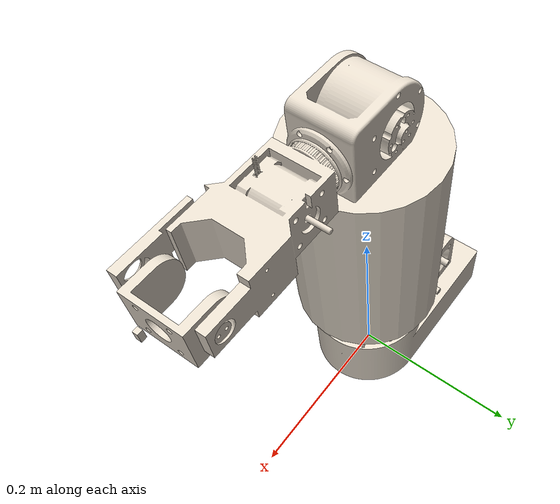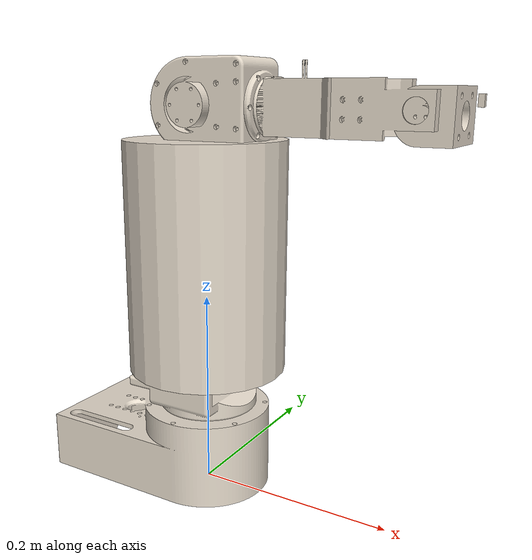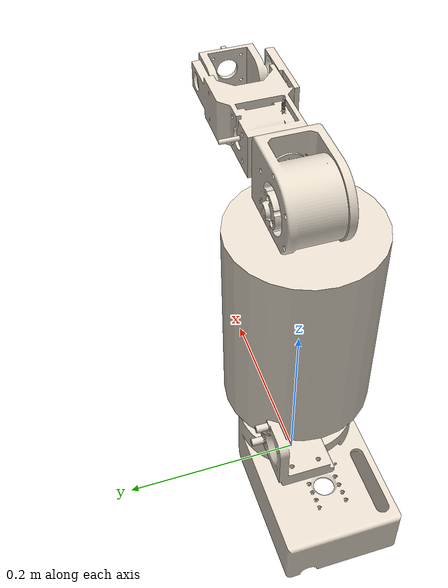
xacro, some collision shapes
<?xml version="1.0"?>
<robot xmlns:xacro="http://www.ros.org/wiki/xacro" name="r6bot">
    <xacro:arg name="initial_positions_file" default="initial_positions.yaml" />

    <!-- Import r6bot urdf file -->
    <xacro:include filename="$(find ros2_control_demo_example_7)/urdf/r6bot.urdf.xacro" />

    <!-- Import control_xacro -->
    <xacro:include filename="r6bot.ros2_control.xacro" />

    <xacro:r6bot_ros2_control name="FakeSystem" initial_positions_file="$(arg initial_positions_file)"/>

</robot>

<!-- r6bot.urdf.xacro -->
<robot xmlns:xacro="http://wiki.ros.org/xacro" name="r6bot">

  <!-- Import my robot's urdf macro -->
  <xacro:include filename="$(find robot_description)/urdf/robot.urdf.xacro" />

  <xacro:my_robot_description />

  <!-- Import r6bot ros2_control description -->
  <xacro:include
    filename="$(find ros2_control_demo_example_7)/ros2_control/r6bot.ros2_control.xacro" />
  <xacro:r6bot_ros2_control name="r6bot" />

</robot>

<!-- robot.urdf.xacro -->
<!-- This file needs cleaned up. Over-parameterised-->
<robot
    xmlns:xacro="http://www.ros.org/wiki/xacro"
    name="robot">

    <xacro:macro name="my_robot_description">
        <!-- meshes -->
        <xacro:property name="base_mesh"
            value="package://robot_description/meshes/arm_base_mesh.stl" />
        <xacro:property name="link_1_mesh"
            value="package://robot_description/meshes/arm_link_1_mesh.stl" />
        <xacro:property name="link_2_mesh"
            value="package://robot_description/meshes/arm_link_2_mesh.stl" />
        <xacro:property name="link_3_mesh"
            value="package://robot_description/meshes/arm_link_3_mesh.stl" />
        <xacro:property name="link_4_mesh"
            value="package://robot_description/meshes/arm_link_4_mesh.stl" />
        <xacro:property name="link_5_mesh"
            value="package://robot_description/meshes/arm_link_5_mesh.stl" />

        <xacro:property name="base_mass" value="12.0" />
        <xacro:property name="base_radius" value="0.09" />
        <xacro:property name="base_length" value="0.086" />
        <xacro:property name="link_1_radius" value="0.09" />
        <xacro:property name="link_1_length" value="0.079" />
        <xacro:property name="link_2_radius" value="0.08" />
        <xacro:property name="link_2_length" value="0.23" />
        <xacro:property name="link_3_radius" value="0.07" />
        <xacro:property name="link_3_length" value="0.075" />
        <xacro:property name="link_4_radius" value="0.05" />
        <xacro:property name="link_4_length" value="0.145" />
        <xacro:property name="link_5_radius" value="0.05" />
        <xacro:property name="link_5_length" value="0.03" />
        <xacro:property name="end_effector_length" value="0.01" />
        <xacro:property name="end_effector_width" value="0.005" />
        <xacro:property name="end_effector_height" value="0.005" />
        <xacro:property name="end_effector_mass" value="0.5" />

        <material name="bone">
            <color rgba="0.89 0.85 0.79 1" />
        </material>

        <material name="navy">
            <color rgba="0.16 0.18 0.34 1" />
        </material>

        <xacro:macro name="link" params="suffix mesh xyz rpy geom_xyz length radius mass colour">
            <link name="link_${suffix}">
                <visual>
                    <origin xyz="${xyz}" rpy="${rpy}" />
                    <geometry>
                        <mesh
                            filename="${mesh}"
                            scale="0.001 0.001 0.001" />
                    </geometry>
                    <material name="${colour}" />
                </visual>
                <collision>
                    <origin xyz="${geom_xyz}" rpy="0.0 0.0 0.0" />
                    <geometry>
                        <cylinder radius="${radius}" length="${length}" />
                    </geometry>
                </collision>
                <inertial>
                    <origin xyz="${xyz}" rpy="${rpy}" />
                    <mass value="${mass}" />
                    <inertia
                        ixx="${mass * (3*radius*radius + length*length) / 12.0}"
                        ixy="0" ixz="0"
                        iyy="${mass * radius * radius / 2.0}"
                        iyz="0"
                        izz="${mass * (3*radius*radius + length*length) / 12.0}" />
                </inertial>
            </link>
        </xacro:macro>

        <link name="world" />
        <joint name="world_joint" type="fixed">
            <parent link="world" />
            <child link="link_base" />
            <origin xyz="0.0 0.0 0.0" rpy="0.0 0.0 0.0" />
        </joint>

        <link name="link_base">
            <visual>
                <!-- dont want half of base joint, want half of motor enclosure (lower part) -->
                <origin xyz="0.0 0.0 0.0295" rpy="0.0 0.0 ${pi}" />
                <geometry>
                    <mesh
                        filename="${base_mesh}"
                        scale="0.001 0.001 0.001" />
                </geometry>
                <material name="bone" />
            </visual>
            <collision>
                <origin xyz="0.0 0.0 0.0295" rpy="0.0 0.0 0.0" />
                <geometry>
                    <cylinder radius="${base_radius}" length="${base_length}" />
                </geometry>
            </collision>
            <inertial>
                <origin xyz="0.0 0.0 0.0295" rpy="0.0 0.0 0.0" />
                <mass value="0.5" />
                <inertia
                    ixx="${0.5 * (3*base_radius*base_radius + base_length*base_length) / 12.0}"
                    ixy="0" ixz="0"
                    iyy="${0.5 * base_radius * base_radius / 2.0}"
                    iyz="0"
                    izz="${0.5 * (3*base_radius*base_radius + base_length*base_length) / 12.0}" />
            </inertial>
        </link>

        <joint name="joint_1" type="continuous">
            <parent link="link_base" />
            <child link="link_1" />
            <origin xyz="0.0 0.0 ${base_length}" rpy="0.0 0.0 0.0" />
            <axis xyz="0 0 1" />
        </joint>

        <xacro:link suffix="1" mesh="${link_1_mesh}" xyz="0.0 0.0 -0.055" rpy="0.0 0.0 0.0"
            geom_xyz="0.0 0.0 0.0"
            length="${link_1_length}"
            radius="${link_1_radius}"
            mass="0.5"
            colour="bone" />
        <joint name="joint_2" type="revolute">
            <limit lower="${0}" upper="${pi/2}" effort="0.0" velocity="${pi}" />
            <parent link="link_1" />
            <child link="link_2" />
            <origin xyz="0.0 0.0 ${link_1_length}" rpy="0.0 0.0 0.0" />
            <axis xyz="0.0 1 0.0" />
        </joint>

        <xacro:link suffix="2" mesh="${link_2_mesh}" xyz="0.0 0.0 -0.134" rpy="0.0 0.0 0.0"
            geom_xyz="0.0 0.0 0.078"
            length="${link_2_length}"
            radius="${link_2_radius}"
            mass="0.5"
            colour="bone" />
        <joint name="joint_3" type="revolute">
            <limit lower="${-pi/2}" upper="${pi/2}" effort="0.0" velocity="${pi}" />
            <parent link="link_2" />
            <child link="link_3" />
            <origin xyz="0.0 0.0 ${link_2_length}" rpy="0.0 ${pi/2} 0.0" />
            <axis xyz="0.0 1 0.0" />
        </joint>

        <xacro:link suffix="3" mesh="${link_3_mesh}" xyz="0.365 0.0 0.0" rpy="0.0 -${pi/2} 0.0"
            geom_xyz="0.0 0.0 0.0"
            length="${link_3_length}"
            radius="${link_3_radius}"
            mass="0.5"
            colour="bone" />
        <joint name="joint_4" type="continuous">
            <parent link="link_3" />
            <child link="link_4" />
            <origin xyz="0.0 0.0 ${link_3_length}" rpy="0.0 0.0 0.0" />
            <axis xyz="0.0 0.0 1" />
        </joint>

        <xacro:link suffix="4" mesh="${link_4_mesh}" xyz="0.365 0.0 -0.075" rpy="0.0 -${pi/2} 0.0"
            geom_xyz="0.0 0.0 0.04"
            length="${link_4_length}"
            radius="${link_4_radius}"
            mass="0.5"
            colour="bone" />
        <joint name="joint_5" type="revolute">
            <limit lower="${-pi/2}" upper="${pi/2}" effort="0.0" velocity="${pi}" />
            <parent link="link_4" />
            <child link="link_5" />
            <origin xyz="0.0 0.0 ${link_4_length}" rpy="0.0 0.0 0.0" />
            <axis xyz="0.0 1.0 0.0" />
        </joint>

        <xacro:link suffix="5" mesh="${link_5_mesh}" xyz="0.37 0.0 -0.22" rpy="0.0 -${pi/2} 0.0"
            geom_xyz="0.0 0.0 0.0"
            length="${link_5_length}"
            radius="${link_5_radius}"
            mass="0.5"
            colour="bone" />
        <joint name="joint_6" type="continuous">
            <parent link="link_5" />
            <child link="end_effector" />
            <origin xyz="0.0 0.0 ${link_5_length}" rpy="0.0 0.0 0.0" />
            <axis xyz="0.0 0 1" />
        </joint>

        <link name="end_effector">
            <visual>
                <origin xyz="0.0 0.0 ${end_effector_length/2}" />
                <geometry>
                    <box size="${end_effector_length} ${end_effector_width} ${end_effector_height}" />
                </geometry>
                <material name="bone" />
            </visual>
            <collision>
                <origin
                    xyz="${end_effector_length/2} ${end_effector_width/2} ${end_effector_height/2}"
                    rpy="0.0 0.0 0.0" />
                <geometry>
                    <box size="${end_effector_length} ${end_effector_width} ${end_effector_height}" />
                </geometry>
            </collision>
            <inertial>
                <origin xyz="${end_effector_length} ${end_effector_width} ${end_effector_height/2}"
                    rpy="0.0 0.0 0.0" />
                <mass value="${end_effector_mass}" />
                <inertia
                    ixx="${end_effector_mass * (end_effector_width*end_effector_width +
    end_effector_length*end_effector_length) / 12.0}"
                    ixy="0" ixz="0"
                    iyy="${end_effector_mass * (end_effector_height*end_effector_height +
    end_effector_length*end_effector_length) / 12.0}"
                    iyz="0"
                    izz="${end_effector_mass * (end_effector_height*end_effector_height +
    end_effector_width*end_effector_width) / 12.0}" />
            </inertial>
        </link>

    </xacro:macro>
</robot>
